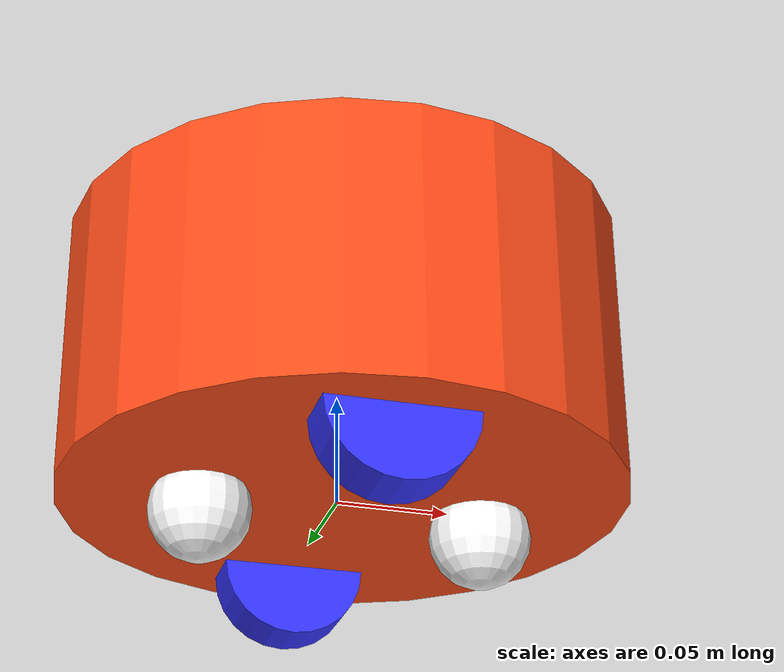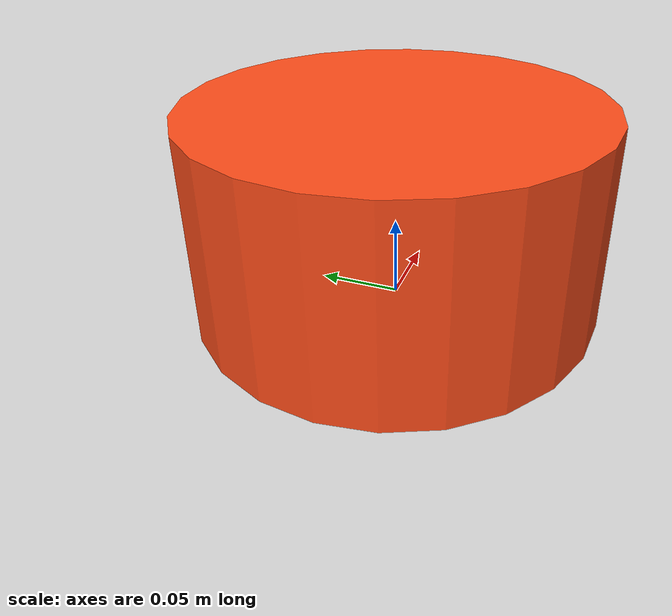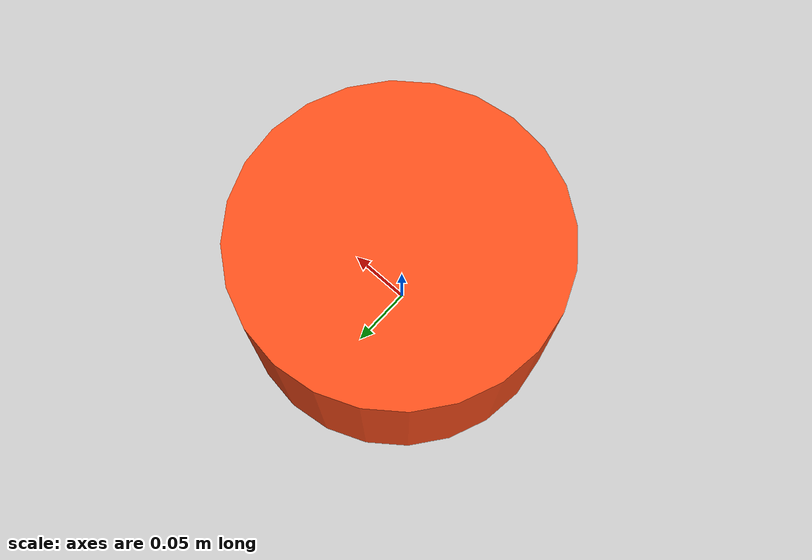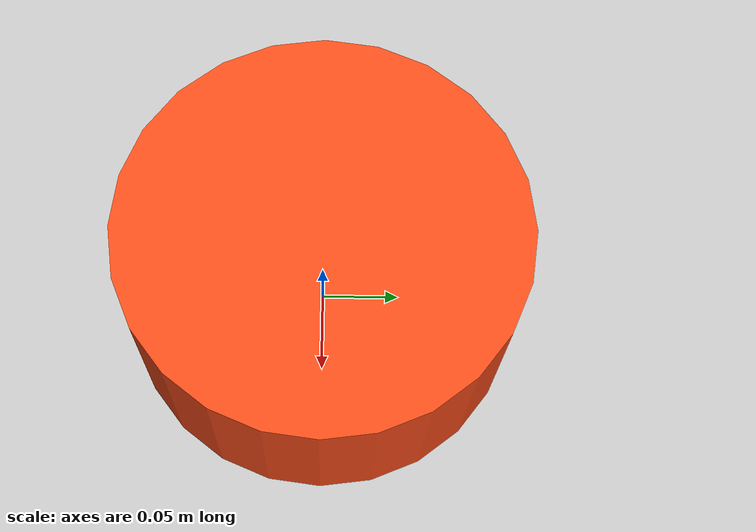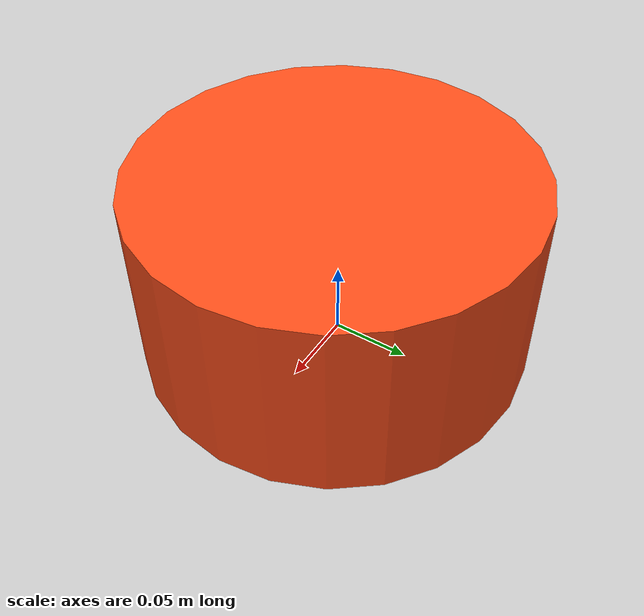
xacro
<?xml version="1.0"?>
<robot xmlns:xacro="http://www.ros.org/wiki/xacro" >

    <xacro:include filename="inertial_macros.xacro"/>

    <xacro:property name="chassis_radius" value="0.125"/>
    <xacro:property name="chassis_thickness" value="0.125"/>
    <xacro:property name="chassis_mass" value="2.5"/>
    <xacro:property name="wheel_radius" value="0.0325"/>
    <xacro:property name="wheel_thickness" value="0.025"/>
    <xacro:property name="wheel_mass" value="0.05"/>
    <xacro:property name="wheel_offset_x" value="0.06"/>
    <xacro:property name="wheel_offset_y" value="0.09"/>
    <xacro:property name="wheel_offset_z" value="0.0"/>
    <xacro:property name="caster_wheel_A_radius" value="0.0225"/>
    <xacro:property name="caster_wheel_A_mass" value="0.05"/>
    <xacro:property name="caster_wheel_A_offset_x" value="0.125"/>
    <xacro:property name="caster_wheel_A_offset_z" value="${wheel_offset_z - wheel_radius + caster_wheel_A_radius}"/>
    <xacro:property name="caster_wheel_B_radius" value="0.0225"/>
    <xacro:property name="caster_wheel_B_mass" value="0.05"/>
    <xacro:property name="caster_wheel_B_offset_x" value="0.0"/>
    <xacro:property name="caster_wheel_B_offset_z" value="${wheel_offset_z - wheel_radius + caster_wheel_B_radius}"/>

    <material name="white">
        <color rgba="1 1 1 1" />
    </material>

    <material name="orange">
        <color rgba="1 0.3 0.1 1"/>
    </material>

    <material name="blue">
        <color rgba="0.2 0.2 1 1"/>
    </material>

    <material name="black">
        <color rgba="0 0 0 1"/>
    </material>

    <material name="red">
        <color rgba="1 0 0 1"/>
    </material>

    <!-- BASE LINK -->

    <link name="base_link">

    </link>

    <!-- BASE_FOOTPRINT LINK -->

    <joint name="base_footprint_joint" type="fixed">
        <parent link="base_link"/>
        <child link="base_footprint"/>
        <origin xyz="0 0 0" rpy="0 0 0"/>
    </joint>

    <link name="base_footprint">
    </link>

    <!-- CHASSIS LINK -->

    <joint name="chassis_joint" type="fixed">
        <parent link="base_link"/>
        <child link="chassis"/>
        <origin xyz="${-wheel_offset_x} 0 ${-wheel_offset_z}"/>
    </joint>

    <link name="chassis">
        <visual>
            <origin xyz="${chassis_radius/2} 0 ${chassis_radius/2}"/>
            <geometry>
                <cylinder radius="${chassis_radius}" length="${chassis_thickness}"/>
            </geometry>
            <material name="orange"/>
        </visual>
        <collision>
            <origin xyz="${chassis_radius/2} 0 ${chassis_radius/2}"/>
            <geometry>
                <cylinder radius="${chassis_radius}" length="${chassis_thickness}"/>
            </geometry>
        </collision>
        <xacro:inertial_box mass="0.5" x="${chassis_radius}" y="${chassis_radius}" z="${chassis_thickness}">
            <origin xyz="${chassis_radius/2} 0 ${chassis_radius/2}" rpy="0 0 0"/>
        </xacro:inertial_box>
    </link>

    <gazebo reference="chassis">
        <material>Gazebo/Orange</material>
    </gazebo>

    <!-- LEFT WHEEL LINK -->

    <joint name="left_wheel_joint" type="continuous">
        <parent link="base_link"/>
        <child link="left_wheel"/>
        <origin xyz="0 ${wheel_offset_y} 0" rpy="-${pi/2} 0 0" />
        <axis xyz="0 0 1"/>
    </joint>

    <link name="left_wheel">
        <visual>
            <geometry>
                <cylinder radius="${wheel_radius}" length="${wheel_thickness}"/>
            </geometry>
            <material name="blue"/>
        </visual>
        <collision>
            <geometry>
                <sphere radius="${wheel_radius}"/>
            </geometry>
        </collision>
        <xacro:inertial_cylinder mass="${wheel_mass}" length="${wheel_thickness}" radius="${wheel_radius}">
            <origin xyz="0 0 0" rpy="0 0 0"/>
        </xacro:inertial_cylinder>
    </link>

    <gazebo reference="left_wheel">
        <material>Gazebo/Blue</material>
    </gazebo>

    <!-- RIGHT WHEEL LINK -->

    <joint name="right_wheel_joint" type="continuous">
        <parent link="base_link"/>
        <child link="right_wheel"/>
        <origin xyz="0 ${-wheel_offset_y} 0" rpy="${pi/2} 0 0" />
        <axis xyz="0 0 -1"/>
    </joint>

    <link name="right_wheel">
        <visual>
            <geometry>
                <cylinder radius="${wheel_radius}" length="${wheel_thickness}"/>
            </geometry>
            <material name="blue"/>
        </visual>
        <collision>
            <geometry>
                <sphere radius="${wheel_radius}"/>
            </geometry>
        </collision>
        <xacro:inertial_cylinder mass="${wheel_mass}" length="${wheel_thickness}" radius="${wheel_radius}">
            <origin xyz="0 0 0" rpy="0 0 0"/>
        </xacro:inertial_cylinder>
    </link>

    <gazebo reference="right_wheel">
        <material>Gazebo/Blue</material>
    </gazebo>

    <!-- CASTER WHEEL A LINK -->

    <joint name="caster_wheel_joint_A" type="fixed">
        <parent link="chassis"/>
        <child link="caster_wheel_A"/>
        <origin xyz="${caster_wheel_A_offset_x} 0 ${caster_wheel_A_offset_z}"/>
    </joint>

    <link name="caster_wheel_A">
        <visual>
            <geometry>
                <sphere radius="${caster_wheel_A_radius}"/>
            </geometry>
            <material name="white"/>
        </visual>
        <collision>
            <geometry>
                <sphere radius="${caster_wheel_A_radius}"/>
            </geometry>
        </collision>
        <xacro:inertial_sphere mass="${caster_wheel_A_mass}" radius="${caster_wheel_A_radius}">
            <origin xyz="0 0 0" rpy="0 0 0"/>
        </xacro:inertial_sphere>
    </link>

    <gazebo reference="caster_wheel_A">
        <material>Gazebo/White</material>
        <mu1 value="0.001"/>
        <mu2 value="0.001"/>
    </gazebo>

    <!-- CASTER WHEEL B LINK -->

    <joint name="caster_wheel_joint_B" type="fixed">
        <parent link="chassis"/>
        <child link="caster_wheel_B"/>
        <origin xyz="${caster_wheel_B_offset_x} 0 ${caster_wheel_B_offset_z}"/>
    </joint>

    <link name="caster_wheel_B">
        <visual>
            <geometry>
                <sphere radius="${caster_wheel_B_radius}"/>
            </geometry>
            <material name="white"/>
        </visual>
        <collision>
            <geometry>
                <sphere radius="${caster_wheel_B_radius}"/>
            </geometry>
        </collision>
        <xacro:inertial_sphere mass="${caster_wheel_B_mass}" radius="${caster_wheel_B_radius}">
            <origin xyz="0 0 0" rpy="0 0 0"/>
        </xacro:inertial_sphere>
    </link>

    <gazebo reference="caster_wheel_B">
        <material>Gazebo/White</material>
        <mu1 value="0.001"/>
        <mu2 value="0.001"/>
    </gazebo>

</robot>
